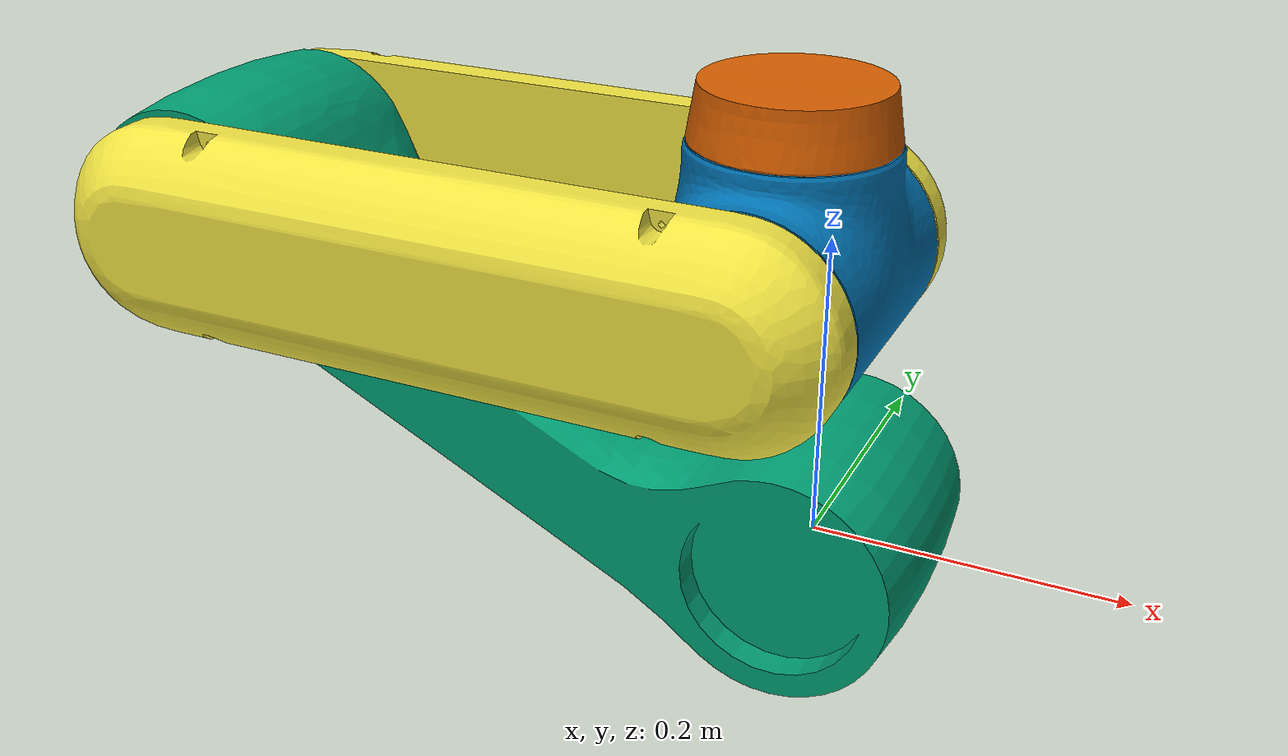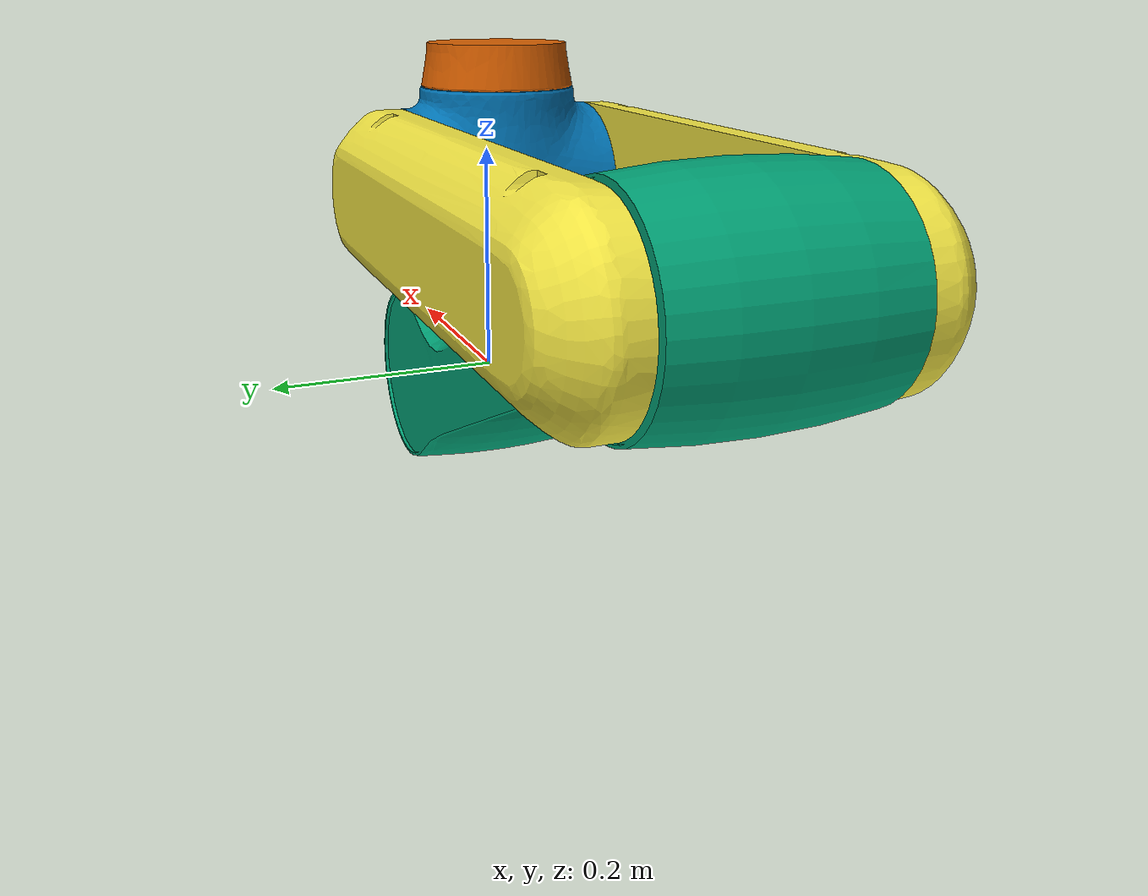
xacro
<?xml version="1.0" ?>
<robot name="galbot_one_golf_leg" xmlns:xacro="http://www.ros.org/wiki/xacro">
    <xacro:property name="PI" value="3.141592653589793"/>
    <xacro:arg name="standalone" default="true"/>
    <xacro:arg name="enable_joint5" default="false"/>

    <xacro:if value="$(arg standalone)">
        <link name="omni_chassis_leg_mount_link"/>
    </xacro:if>

    <joint name="leg_joint" type="fixed">
        <parent link="omni_chassis_leg_mount_link"/>
        <child link="leg_base_link"/>
    </joint>

    <link name="leg_base_link">
        <inertial>
            <origin xyz="7e-05 -0.05414 0"/>
            <mass value="1.58"/>
            <inertia ixx="0.00797474" ixy="8.35e-06" ixz="2e-08" iyy="0.00248067" iyz="6.9e-07" izz="0.00797203"/>
        </inertial>
    </link>

    <link name="leg_link1">
        <inertial>
            <origin xyz="0.22308 0.00065 -0.03018"/>
            <mass value="17.206"/>
            <inertia ixx="0.07124549" ixy="0.00349977" ixz="0.12482873" iyy="1.69951784" iyz="0.00023749" izz="1.67846222"/>
        </inertial>
        <visual>
            <geometry>
                <mesh filename="package://galbot_one_golf_description/meshes/visual/leg/leg1.glb"/>
            </geometry>
        </visual>
        <collision>
            <geometry>
                <mesh filename="package://galbot_one_golf_description/meshes/collision/leg/leg1/link1_collision_01.stl"/>
            </geometry>
        </collision>
        <collision>
            <geometry>
                <mesh filename="package://galbot_one_golf_description/meshes/collision/leg/leg1/link1_collision_02.stl"/>
            </geometry>
        </collision>
        <collision>
            <geometry>
                <mesh filename="package://galbot_one_golf_description/meshes/collision/leg/leg1/link1_collision_03.stl"/>
            </geometry>
        </collision>
    </link>

    <joint name="leg_joint1" type="revolute">
        <origin rpy="${PI/2} -0.385 ${PI}"/>
        <parent link="leg_base_link"/>
        <child link="leg_link1"/>
        <axis xyz="0 0 1"/>
        <limit effort="169" lower="0.0" upper="0.9374" velocity="1"/>
    </joint>

    <link name="leg_link2">
        <inertial>
            <origin xyz="0.1798 0.00017 0.04174"/>
            <mass value="7.611"/>
            <inertia ixx="0.08014216" ixy="0.00014962" ixz="0.05492423" iyy="0.49511503" iyz="0.00010258"
                     izz="0.43725146"/>
        </inertial>
        <visual>
            <geometry>
                <mesh filename="package://galbot_one_golf_description/meshes/visual/leg/leg2.glb"/>
            </geometry>
        </visual>
        <collision>
            <geometry>
                <mesh filename="package://galbot_one_golf_description/meshes/collision/leg/lge2/link2_collision_01.stl"/>
            </geometry>
        </collision>
        <collision>
            <geometry>
                <mesh filename="package://galbot_one_golf_description/meshes/collision/leg/lge2/link2_collision_02.stl"/>
            </geometry>
        </collision>
    </link>

    <joint name="leg_joint2" type="revolute">
        <origin rpy="${PI} 0 2.7566" xyz="0.45 0 0"/>
        <parent link="leg_link1"/>
        <child link="leg_link2"/>
        <axis xyz="0 0 1"/>
        <limit effort="169" lower="0.0" upper="2.5847" velocity="1"/>
    </joint>

    <link name="leg_link3">
        <inertial>
            <origin xyz="0.0001 0.00931 -0.02092"/>
            <mass value="4.5"/>
            <inertia ixx="0.01939794" ixy="1.798e-05" ixz="2.812e-05" iyy="0.01757571" iyz="1.732e-05" izz="0.01384547"/>
        </inertial>
        <visual>
            <geometry>
                <mesh filename="package://galbot_one_golf_description/meshes/visual/leg/leg3.glb"/>
            </geometry>
        </visual>
        <collision>
            <geometry>
                <mesh filename="package://galbot_one_golf_description/meshes/collision/leg/leg3/link3_collision_01.stl"/>
            </geometry>
        </collision>
        <collision>
            <geometry>
                <mesh filename="package://galbot_one_golf_description/meshes/collision/leg/leg3/link3_collision_02.stl"/>
            </geometry>
        </collision>
    </link>

    <joint name="leg_joint3" type="revolute">
        <origin rpy="${PI} 0 ${PI}" xyz="0.39 0 0"/>
        <parent link="leg_link2"/>
        <child link="leg_link3"/>
        <axis xyz="0 0 1"/>
        <limit effort="84" lower="0.0" upper="2.3262" velocity="1"/>
    </joint>

    <link name="leg_link4">
        <inertial>
            <origin xyz="8e-05 -0.02006 -0.04905"/>
            <mass value="5.05"/>
            <inertia ixx="0.03451013" ixy="8.33e-06" ixz="2.101e-05" iyy="0.03294961" iyz="0.00043489" izz="0.01161759"/>
        </inertial>
        <visual>
            <geometry>
                <mesh filename="package://galbot_one_golf_description/meshes/visual/leg/leg4.glb"/>
            </geometry>
        </visual>
        <collision>
            <geometry>
                <mesh filename="package://galbot_one_golf_description/meshes/collision/leg/leg4/link4_collision_01.stl"/>
            </geometry>
        </collision>
    </link>

    <joint name="leg_joint4" type="revolute">
        <origin rpy="-${PI/2} -${PI/2} 0" xyz="0 0.224 0"/>
        <parent link="leg_link3"/>
        <child link="leg_link4"/>
        <axis xyz="0 0 1"/>
        <limit effort="30" lower="-1.5906" upper="1.5906" velocity="1"/>
    </joint>

    <xacro:if value="$(arg enable_joint5)">
        <link name="leg_link5">
            <inertial>
                <origin xyz="0 0.01247 0.0529"/>
                <mass value="1.28"/>
                <inertia ixx="0.0059985" ixy="0" ixz="0" iyy="0.0059157" iyz="0.00029352"
                         izz="0.00345508"/>
            </inertial>
        </link>

        <joint name="leg_joint5" type="revolute">
            <origin rpy="${PI/2} 0 0"/>
            <parent link="leg_link4"/>
            <child link="leg_link5"/>
            <axis xyz="0 0 1"/>
            <limit effort="30" lower="-0.1645" upper="0.1645" velocity="1"/>
        </joint>

        <link name="leg_end_effector_mount_link"/>
        <joint name="leg_end_effector_mount_joint" type="fixed">
            <parent link="leg_link5"/>
            <child link="leg_end_effector_mount_link"/>
        </joint>
    </xacro:if>

    <xacro:unless value="$(arg enable_joint5)">
        <link name="leg_end_effector_mount_link">
            <inertial>
                <origin xyz="0 0.01247 0.0529"/>
                <mass value="1.28"/>
                <inertia ixx="0.0059985" ixy="0" ixz="0" iyy="0.0059157" iyz="0.00029352"
                         izz="0.00345508"/>
            </inertial>
        </link>

        <joint name="leg_end_effector_mount_joint" type="fixed">
            <origin rpy="${PI/2} 0 0"/>
            <parent link="leg_link4"/>
            <child link="leg_end_effector_mount_link"/>
        </joint>
    </xacro:unless>
</robot>
